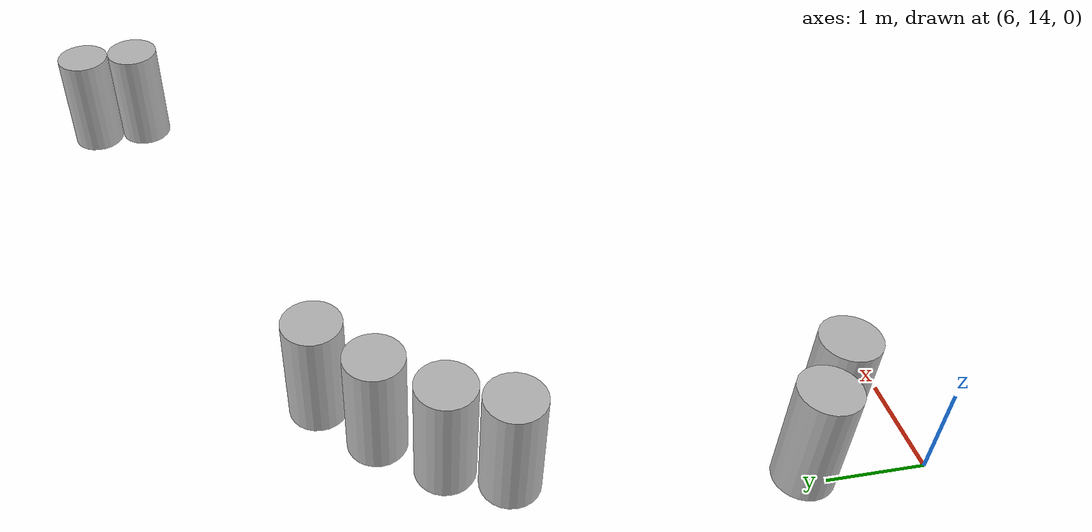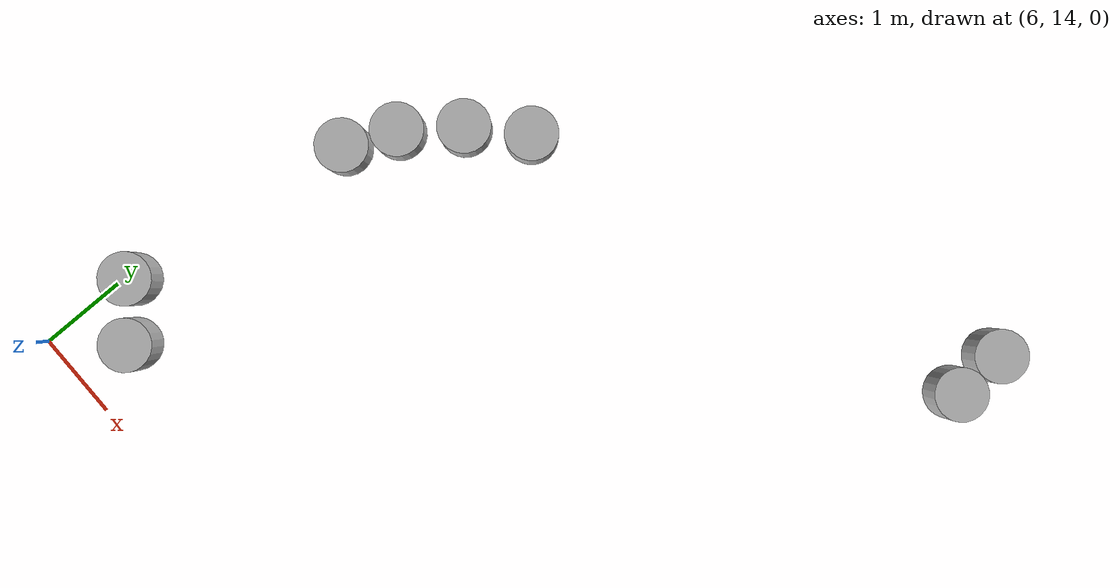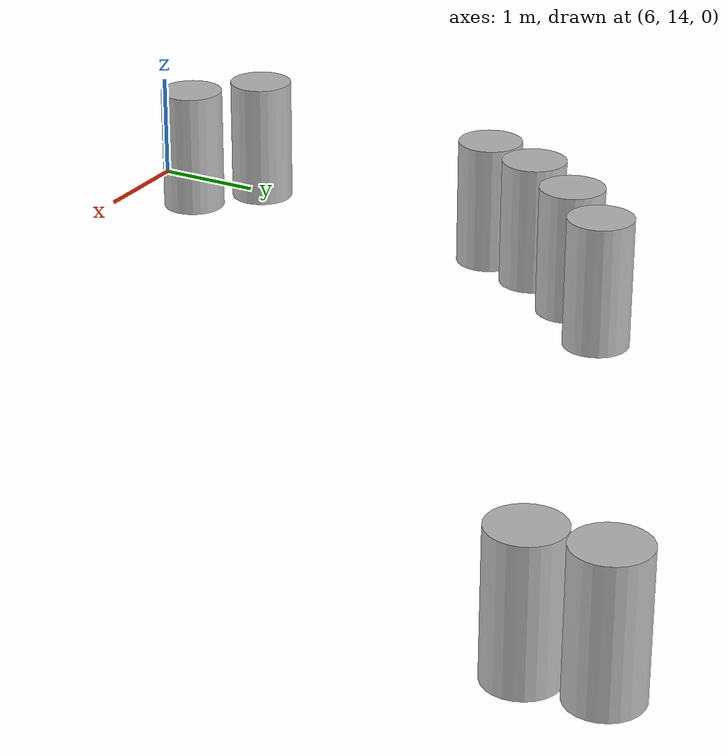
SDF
<sdf version="1.6">
 <world name="default">
  <model name="Construction Barrel_clone_clone_clone_24">
   <link name="link">
    <inertial>
     <pose>0 0 0.5 0 -0 0</pose>
     <mass>500</mass>
     <inertia><ixx>51.2096</ixx><iyy>51.2096</iyy><izz>25</izz><ixy>0</ixy><ixz>0</ixz><iyz>0</iyz></inertia>
    </inertial>
    <collision name="collision">
     <geometry><cylinder><radius>0.3</radius><length>1.2</length></cylinder></geometry>
    </collision>
    <visual name="visual">
     <geometry><cylinder><radius>0.3</radius><length>1.2</length></cylinder></geometry>
     <material>
      <script>
       <uri>model://construction_barrel/materials/scripts</uri>
       <uri>model://construction_barrel/materials/textures</uri>
       <name>construction_barrel/Image</name>
      </script>
     </material>
    </visual>
    <velocity_decay><linear>0</linear><angular>0</angular></velocity_decay>
   </link>
   <pose>12.8643 21.9999 0.613748 0 -0 0</pose>
   <static>1</static>
  </model>
  <model name="Construction Barrel_clone_clone_clone_25">
   <link name="link">
    <inertial>
     <pose>0 0 0.5 0 -0 0</pose>
     <mass>500</mass>
     <inertia><ixx>51.2096</ixx><iyy>51.2096</iyy><izz>25</izz><ixy>0</ixy><ixz>0</ixz><iyz>0</iyz></inertia>
    </inertial>
    <collision name="collision">
     <geometry><cylinder><radius>0.3</radius><length>1.2</length></cylinder></geometry>
    </collision>
    <visual name="visual">
     <geometry><cylinder><radius>0.3</radius><length>1.2</length></cylinder></geometry>
     <material>
      <script>
       <uri>model://construction_barrel/materials/scripts</uri>
       <uri>model://construction_barrel/materials/textures</uri>
       <name>construction_barrel/Image</name>
      </script>
     </material>
    </visual>
    <velocity_decay><linear>0</linear><angular>0</angular></velocity_decay>
   </link>
   <pose>12.9048 21.3989 0.613748 0 -0 0</pose>
   <static>1</static>
  </model>
  <model name="Construction Barrel_clone_clone_clone_30">
   <link name="link">
    <inertial>
     <pose>0 0 0.5 0 -0 0</pose>
     <mass>500</mass>
     <inertia><ixx>51.2096</ixx><iyy>51.2096</iyy><izz>25</izz><ixy>0</ixy><ixz>0</ixz><iyz>0</iyz></inertia>
    </inertial>
    <collision name="collision">
     <geometry><cylinder><radius>0.3</radius><length>1.2</length></cylinder></geometry>
    </collision>
    <visual name="visual">
     <geometry><cylinder><radius>0.3</radius><length>1.2</length></cylinder></geometry>
     <material>
      <script>
       <uri>model://construction_barrel/materials/scripts</uri>
       <uri>model://construction_barrel/materials/textures</uri>
       <name>construction_barrel/Image</name>
      </script>
     </material>
    </visual>
    <velocity_decay><linear>0</linear><angular>0</angular></velocity_decay>
   </link>
   <pose>7.71858 19.6237 0.613748 0 -0 0</pose>
   <static>1</static>
  </model>
  <model name="Construction Barrel_clone_clone_clone_38">
   <link name="link">
    <inertial>
     <pose>0 0 0.5 0 -0 0</pose>
     <mass>500</mass>
     <inertia><ixx>51.2096</ixx><iyy>51.2096</iyy><izz>25</izz><ixy>0</ixy><ixz>0</ixz><iyz>0</iyz></inertia>
    </inertial>
    <collision name="collision">
     <geometry><cylinder><radius>0.3</radius><length>1.2</length></cylinder></geometry>
    </collision>
    <visual name="visual">
     <geometry><cylinder><radius>0.3</radius><length>1.2</length></cylinder></geometry>
     <material>
      <script>
       <uri>model://construction_barrel/materials/scripts</uri>
       <uri>model://construction_barrel/materials/textures</uri>
       <name>construction_barrel/Image</name>
      </script>
     </material>
    </visual>
    <velocity_decay><linear>0</linear><angular>0</angular></velocity_decay>
   </link>
   <pose>7.1837 19.1082 0.613748 0 -0 0</pose>
   <static>1</static>
  </model>
  <model name="Construction Barrel_clone_clone_clone_39">
   <link name="link">
    <inertial>
     <pose>0 0 0.5 0 -0 0</pose>
     <mass>500</mass>
     <inertia><ixx>51.2096</ixx><iyy>51.2096</iyy><izz>25</izz><ixy>0</ixy><ixz>0</ixz><iyz>0</iyz></inertia>
    </inertial>
    <collision name="collision">
     <geometry><cylinder><radius>0.3</radius><length>1.2</length></cylinder></geometry>
    </collision>
    <visual name="visual">
     <geometry><cylinder><radius>0.3</radius><length>1.2</length></cylinder></geometry>
     <material>
      <script>
       <uri>model://construction_barrel/materials/scripts</uri>
       <uri>model://construction_barrel/materials/textures</uri>
       <name>construction_barrel/Image</name>
      </script>
     </material>
    </visual>
    <velocity_decay><linear>0</linear><angular>0</angular></velocity_decay>
   </link>
   <pose>6.74084 18.5227 0.613748 0 -0 0</pose>
   <static>1</static>
  </model>
  <model name="Construction Barrel_clone_clone_clone_40">
   <link name="link">
    <inertial>
     <pose>0 0 0.5 0 -0 0</pose>
     <mass>500</mass>
     <inertia><ixx>51.2096</ixx><iyy>51.2096</iyy><izz>25</izz><ixy>0</ixy><ixz>0</ixz><iyz>0</iyz></inertia>
    </inertial>
    <collision name="collision">
     <geometry><cylinder><radius>0.3</radius><length>1.2</length></cylinder></geometry>
    </collision>
    <visual name="visual">
     <geometry><cylinder><radius>0.3</radius><length>1.2</length></cylinder></geometry>
     <material>
      <script>
       <uri>model://construction_barrel/materials/scripts</uri>
       <uri>model://construction_barrel/materials/textures</uri>
       <name>construction_barrel/Image</name>
      </script>
     </material>
    </visual>
    <velocity_decay><linear>0</linear><angular>0</angular></velocity_decay>
   </link>
   <pose>6.48879 17.9493 0.613748 0 -0 0</pose>
   <static>1</static>
  </model>
  <model name="Construction Barrel_clone_clone_clone_48">
   <link name="link">
    <inertial>
     <pose>0 0 0.5 0 -0 0</pose>
     <mass>500</mass>
     <inertia><ixx>51.2096</ixx><iyy>51.2096</iyy><izz>25</izz><ixy>0</ixy><ixz>0</ixz><iyz>0</iyz></inertia>
    </inertial>
    <collision name="collision">
     <geometry><cylinder><radius>0.3</radius><length>1.2</length></cylinder></geometry>
    </collision>
    <visual name="visual">
     <geometry><cylinder><radius>0.3</radius><length>1.2</length></cylinder></geometry>
     <material>
      <script>
       <uri>model://construction_barrel/materials/scripts</uri>
       <uri>model://construction_barrel/materials/textures</uri>
       <name>construction_barrel/Image</name>
      </script>
     </material>
    </visual>
    <velocity_decay><linear>0</linear><angular>0</angular></velocity_decay>
   </link>
   <pose>6.09515 15.204 0.613748 0 -0 0</pose>
   <static>1</static>
  </model>
  <model name="Construction Barrel_clone_clone_clone_49">
   <link name="link">
    <inertial>
     <pose>0 0 0.5 0 -0 0</pose>
     <mass>500</mass>
     <inertia><ixx>51.2096</ixx><iyy>51.2096</iyy><izz>25</izz><ixy>0</ixy><ixz>0</ixz><iyz>0</iyz></inertia>
    </inertial>
    <collision name="collision">
     <geometry><cylinder><radius>0.3</radius><length>1.2</length></cylinder></geometry>
    </collision>
    <visual name="visual">
     <geometry><cylinder><radius>0.3</radius><length>1.2</length></cylinder></geometry>
     <material>
      <script>
       <uri>model://construction_barrel/materials/scripts</uri>
       <uri>model://construction_barrel/materials/textures</uri>
       <name>construction_barrel/Image</name>
      </script>
     </material>
    </visual>
    <velocity_decay><linear>0</linear><angular>0</angular></velocity_decay>
   </link>
   <pose>6.65375 14.7439 0.613748 0 -0 0</pose>
   <static>1</static>
  </model>
 </world>
</sdf>
